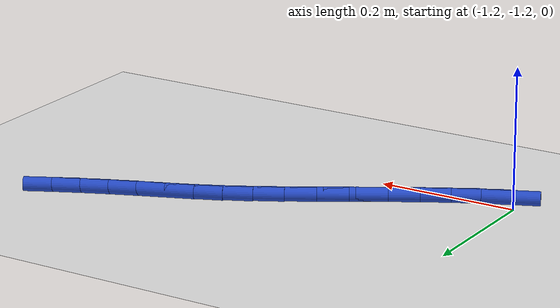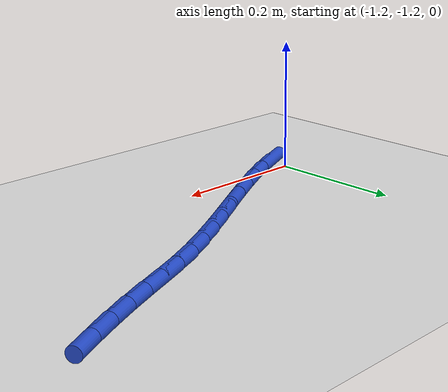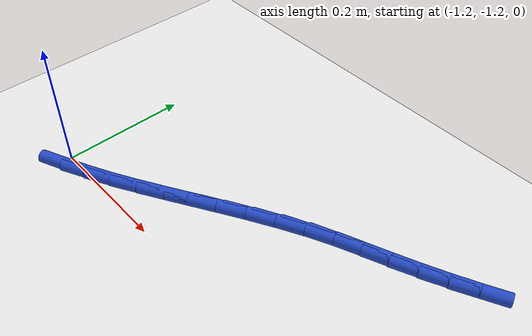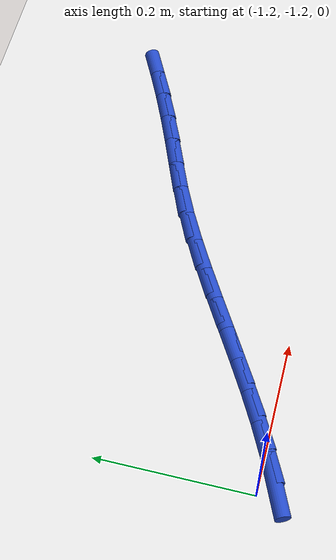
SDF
<sdf version="1.6">
 <world name="default">
  <model name="ground_plane">
   <static>1</static>
   <link name="link">
    <collision name="collision">
     <geometry><plane><normal>0 0 1</normal><size>100 100</size></plane></geometry>
     <surface><friction><ode><mu>100</mu><mu2>50</mu2></ode></friction></surface>
    </collision>
    <visual name="visual">
     <cast_shadows>0</cast_shadows>
     <geometry><plane><normal>0 0 1</normal><size>100 100</size></plane></geometry>
     <material>
      <script><uri>file://media/materials/scripts/gazebo.material</uri><name>Gazebo/WhiteGlow</name></script>
     </material>
    </visual>
   </link>
  </model>
  <model name="line">
   <link name="link_145">
    <pose>-1.1866108252861083 -1.2191225083369155 0.01 0 1.57 0.4196703449522883</pose>
    <collision name="collision">
     <geometry><cylinder><radius>0.01</radius><length>0.08</length></cylinder></geometry>
    </collision>
    <visual name="visual">
     <material>
      <script><name>Gazebo/Blue</name><uri>file://media/materials/scripts/gazebo.material</uri></script>
     </material>
     <geometry><cylinder><radius>0.01</radius><length>0.08</length></cylinder></geometry>
    </visual>
   </link>
   <link name="link_146">
    <pose>-1.1495437344636596 -1.2025840172713067 0.01 0 1.57 0.46937108945443085</pose>
    <collision name="collision">
     <geometry><cylinder><radius>0.01</radius><length>0.08</length></cylinder></geometry>
    </collision>
    <visual name="visual">
     <material>
      <script><name>Gazebo/Blue</name><uri>file://media/materials/scripts/gazebo.material</uri></script>
     </material>
     <geometry><cylinder><radius>0.01</radius><length>0.08</length></cylinder></geometry>
    </visual>
   </link>
   <link name="link_147">
    <pose>-1.1120759193462642 -1.1835812795707745 0.01 0 1.57 0.5049295048226963</pose>
    <collision name="collision">
     <geometry><cylinder><radius>0.01</radius><length>0.08</length></cylinder></geometry>
    </collision>
    <visual name="visual">
     <material>
      <script><name>Gazebo/Blue</name><uri>file://media/materials/scripts/gazebo.material</uri></script>
     </material>
     <geometry><cylinder><radius>0.01</radius><length>0.08</length></cylinder></geometry>
    </visual>
   </link>
   <link name="link_148">
    <pose>-1.07431022525707 -1.1627074053656652 0.01 0 1.57 0.5282344780049059</pose>
    <collision name="collision">
     <geometry><cylinder><radius>0.01</radius><length>0.08</length></cylinder></geometry>
    </collision>
    <visual name="visual">
     <material>
      <script><name>Gazebo/Blue</name><uri>file://media/materials/scripts/gazebo.material</uri></script>
     </material>
     <geometry><cylinder><radius>0.01</radius><length>0.08</length></cylinder></geometry>
    </visual>
   </link>
   <link name="link_149">
    <pose>-1.036349497519226 -1.1405555047863258 0.01 0 1.57 0.540517407421525</pose>
    <collision name="collision">
     <geometry><cylinder><radius>0.01</radius><length>0.08</length></cylinder></geometry>
    </collision>
    <visual name="visual">
     <material>
      <script><name>Gazebo/Blue</name><uri>file://media/materials/scripts/gazebo.material</uri></script>
     </material>
     <geometry><cylinder><radius>0.01</radius><length>0.08</length></cylinder></geometry>
    </visual>
   </link>
   <link name="link_150">
    <pose>-0.9982965814558796 -1.117718687963102 0.01 0 1.57 0.5424131004876803</pose>
    <collision name="collision">
     <geometry><cylinder><radius>0.01</radius><length>0.08</length></cylinder></geometry>
    </collision>
    <visual name="visual">
     <material>
      <script><name>Gazebo/Blue</name><uri>file://media/materials/scripts/gazebo.material</uri></script>
     </material>
     <geometry><cylinder><radius>0.01</radius><length>0.08</length></cylinder></geometry>
    </visual>
   </link>
   <link name="link_151">
    <pose>-0.9602543223901793 -1.0947900650263407 0.01 0 1.57 0.5339987618813442</pose>
    <collision name="collision">
     <geometry><cylinder><radius>0.01</radius><length>0.08</length></cylinder></geometry>
    </collision>
    <visual name="visual">
     <material>
      <script><name>Gazebo/Blue</name><uri>file://media/materials/scripts/gazebo.material</uri></script>
     </material>
     <geometry><cylinder><radius>0.01</radius><length>0.08</length></cylinder></geometry>
    </visual>
   </link>
   <link name="link_152">
    <pose>-0.9223255656452747 -1.0723627461063883 0.01 0 1.57 0.5147968069836035</pose>
    <collision name="collision">
     <geometry><cylinder><radius>0.01</radius><length>0.08</length></cylinder></geometry>
    </collision>
    <visual name="visual">
     <material>
      <script><name>Gazebo/Blue</name><uri>file://media/materials/scripts/gazebo.material</uri></script>
     </material>
     <geometry><cylinder><radius>0.01</radius><length>0.08</length></cylinder></geometry>
    </visual>
   </link>
   <link name="link_153">
    <pose>-0.8846131565443115 -1.0510298413335906 0.01 0 1.57 0.4837392440612838</pose>
    <collision name="collision">
     <geometry><cylinder><radius>0.01</radius><length>0.08</length></cylinder></geometry>
    </collision>
    <visual name="visual">
     <material>
      <script><name>Gazebo/Blue</name><uri>file://media/materials/scripts/gazebo.material</uri></script>
     </material>
     <geometry><cylinder><radius>0.01</radius><length>0.08</length></cylinder></geometry>
    </visual>
   </link>
   <link name="link_154">
    <pose>-0.8472199404104397 -1.0313844608382947 0.01 0 1.57 0.43939677044351294</pose>
    <collision name="collision">
     <geometry><cylinder><radius>0.01</radius><length>0.08</length></cylinder></geometry>
    </collision>
    <visual name="visual">
     <material>
      <script><name>Gazebo/Blue</name><uri>file://media/materials/scripts/gazebo.material</uri></script>
     </material>
     <geometry><cylinder><radius>0.01</radius><length>0.08</length></cylinder></geometry>
    </visual>
   </link>
   <link name="link_155">
    <pose>-0.8102467999271471 -1.014005464999834 0.01 0 1.57 0.396205450078725</pose>
    <collision name="collision">
     <geometry><cylinder><radius>0.01</radius><length>0.08</length></cylinder></geometry>
    </collision>
    <visual name="visual">
     <material>
      <script><name>Gazebo/Blue</name><uri>file://media/materials/scripts/gazebo.material</uri></script>
     </material>
     <geometry><cylinder><radius>0.01</radius><length>0.08</length></cylinder></geometry>
    </visual>
   </link>
   <link name="link_156">
    <pose>-0.7736900895943043 -0.9987127870134156 0.01 0 1.57 0.38029542666004096</pose>
    <collision name="collision">
     <geometry><cylinder><radius>0.01</radius><length>0.08</length></cylinder></geometry>
    </collision>
    <visual name="visual">
     <material>
      <script><name>Gazebo/Blue</name><uri>file://media/materials/scripts/gazebo.material</uri></script>
     </material>
     <geometry><cylinder><radius>0.01</radius><length>0.08</length></cylinder></geometry>
    </visual>
   </link>
   <link name="link_157">
    <pose>-0.7373913266215691 -0.9842021634739608 0.01 0 1.57 0.3936184561876757</pose>
    <collision name="collision">
     <geometry><cylinder><radius>0.01</radius><length>0.08</length></cylinder></geometry>
    </collision>
    <visual name="visual">
     <material>
      <script><name>Gazebo/Blue</name><uri>file://media/materials/scripts/gazebo.material</uri></script>
     </material>
     <geometry><cylinder><radius>0.01</radius><length>0.08</length></cylinder></geometry>
    </visual>
   </link>
   <link name="link_158">
    <pose>-0.7011965199246253 -0.9691707828486951 0.01 0 1.57 0.41756811598424154</pose>
    <collision name="collision">
     <geometry><cylinder><radius>0.01</radius><length>0.08</length></cylinder></geometry>
    </collision>
    <visual name="visual">
     <material>
      <script><name>Gazebo/Blue</name><uri>file://media/materials/scripts/gazebo.material</uri></script>
     </material>
     <geometry><cylinder><radius>0.01</radius><length>0.08</length></cylinder></geometry>
    </visual>
   </link>
   <link name="link_159">
    <pose>-0.6651070810141859 -0.9531593843385189 0.01 0 1.57 0.4422319753251733</pose>
    <collision name="collision">
     <geometry><cylinder><radius>0.01</radius><length>0.08</length></cylinder></geometry>
    </collision>
    <visual name="visual">
     <material>
      <script><name>Gazebo/Blue</name><uri>file://media/materials/scripts/gazebo.material</uri></script>
     </material>
     <geometry><cylinder><radius>0.01</radius><length>0.08</length></cylinder></geometry>
    </visual>
   </link>
   <link name="link_160">
    <pose>-0.6292076817043761 -0.9361606577055005 0.01 0 1.57 0.4676173064807486</pose>
    <collision name="collision">
     <geometry><cylinder><radius>0.01</radius><length>0.08</length></cylinder></geometry>
    </collision>
    <visual name="visual">
     <material>
      <script><name>Gazebo/Blue</name><uri>file://media/materials/scripts/gazebo.material</uri></script>
     </material>
     <geometry><cylinder><radius>0.01</radius><length>0.08</length></cylinder></geometry>
    </visual>
   </link>
  </model>
 </world>
</sdf>
